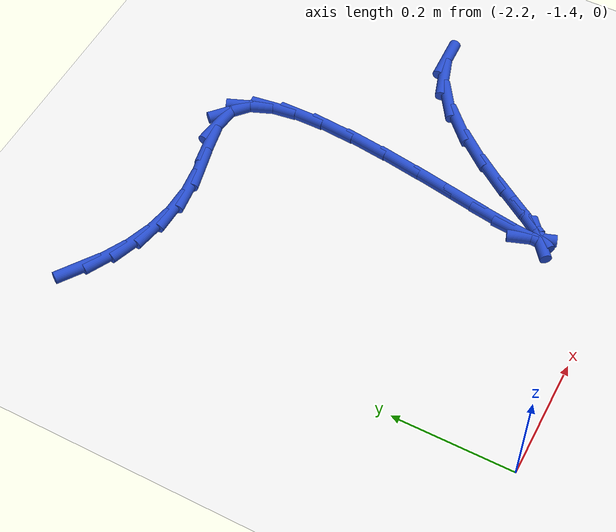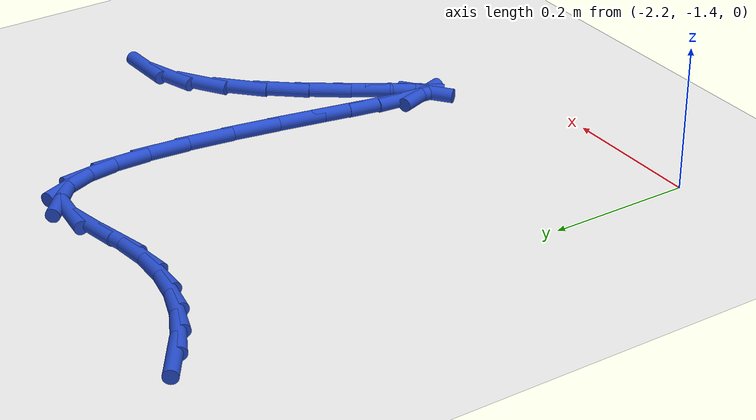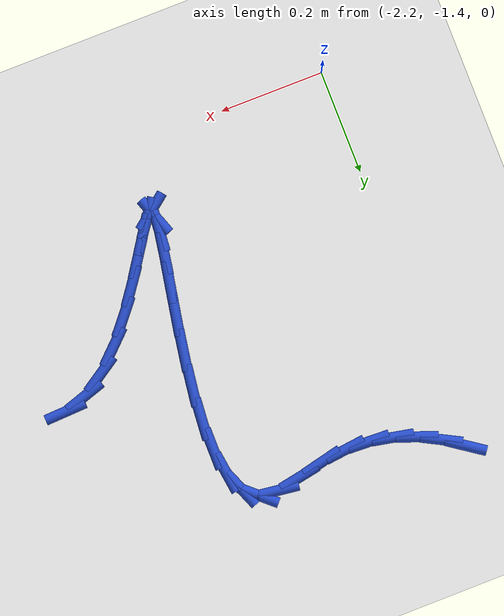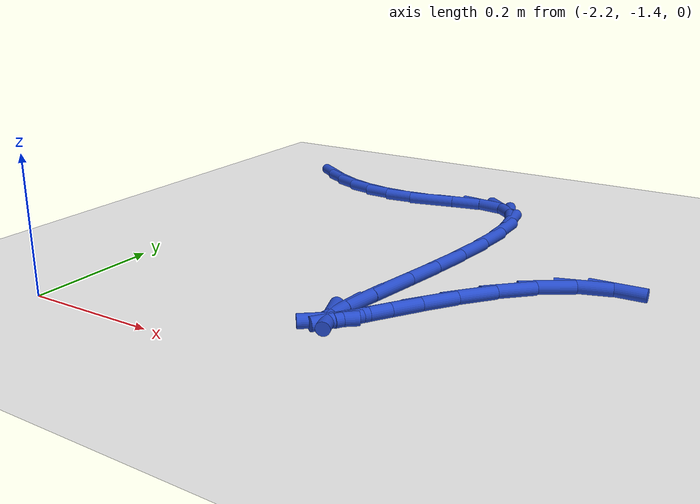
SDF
<sdf version="1.6">
 <world name="default">
  <model name="ground_plane">
   <static>1</static>
   <link name="link">
    <collision name="collision">
     <geometry><plane><normal>0 0 1</normal><size>100 100</size></plane></geometry>
     <surface><friction><ode><mu>100</mu><mu2>50</mu2></ode></friction></surface>
    </collision>
    <visual name="visual">
     <cast_shadows>0</cast_shadows>
     <geometry><plane><normal>0 0 1</normal><size>100 100</size></plane></geometry>
     <material>
      <script><uri>file://media/materials/scripts/gazebo.material</uri><name>Gazebo/WhiteGlow</name></script>
     </material>
    </visual>
   </link>
  </model>
  <model name="line">
   <link name="link_104">
    <pose>-2.1966533031225834 -0.6531262615738779 0.01 0 1.57 -0.6097737545110093</pose>
    <collision name="collision">
     <geometry><cylinder><radius>0.01</radius><length>0.08</length></cylinder></geometry>
    </collision>
    <visual name="visual">
     <material>
      <script><name>Gazebo/Blue</name><uri>file://media/materials/scripts/gazebo.material</uri></script>
     </material>
     <geometry><cylinder><radius>0.01</radius><length>0.08</length></cylinder></geometry>
    </visual>
   </link>
   <link name="link_105">
    <pose>-2.1585192303656506 -0.6797660441817078 0.01 0 1.57 -0.484161533849588</pose>
    <collision name="collision">
     <geometry><cylinder><radius>0.01</radius><length>0.08</length></cylinder></geometry>
    </collision>
    <visual name="visual">
     <material>
      <script><name>Gazebo/Blue</name><uri>file://media/materials/scripts/gazebo.material</uri></script>
     </material>
     <geometry><cylinder><radius>0.01</radius><length>0.08</length></cylinder></geometry>
    </visual>
   </link>
   <link name="link_106">
    <pose>-2.1182261841894126 -0.7009566333267483 0.01 0 1.57 -0.3452224587544478</pose>
    <collision name="collision">
     <geometry><cylinder><radius>0.01</radius><length>0.08</length></cylinder></geometry>
    </collision>
    <visual name="visual">
     <material>
      <script><name>Gazebo/Blue</name><uri>file://media/materials/scripts/gazebo.material</uri></script>
     </material>
     <geometry><cylinder><radius>0.01</radius><length>0.08</length></cylinder></geometry>
    </visual>
   </link>
   <link name="link_107">
    <pose>-2.0758170305263697 -0.7162079722306943 0.01 0 1.57 -0.19578578161549126</pose>
    <collision name="collision">
     <geometry><cylinder><radius>0.01</radius><length>0.08</length></cylinder></geometry>
    </collision>
    <visual name="visual">
     <material>
      <script><name>Gazebo/Blue</name><uri>file://media/materials/scripts/gazebo.material</uri></script>
     </material>
     <geometry><cylinder><radius>0.01</radius><length>0.08</length></cylinder></geometry>
    </visual>
   </link>
   <link name="link_108">
    <pose>-2.0313346353090207 -0.7250300041152404 0.01 0 1.57 -0.04088356493906653</pose>
    <collision name="collision">
     <geometry><cylinder><radius>0.01</radius><length>0.08</length></cylinder></geometry>
    </collision>
    <visual name="visual">
     <material>
      <script><name>Gazebo/Blue</name><uri>file://media/materials/scripts/gazebo.material</uri></script>
     </material>
     <geometry><cylinder><radius>0.01</radius><length>0.08</length></cylinder></geometry>
    </visual>
   </link>
   <link name="link_109">
    <pose>-1.9848218644698636 -0.7269326722020812 0.01 0 1.57 0.11304480200438631</pose>
    <collision name="collision">
     <geometry><cylinder><radius>0.01</radius><length>0.08</length></cylinder></geometry>
    </collision>
    <visual name="visual">
     <material>
      <script><name>Gazebo/Blue</name><uri>file://media/materials/scripts/gazebo.material</uri></script>
     </material>
     <geometry><cylinder><radius>0.01</radius><length>0.08</length></cylinder></geometry>
    </visual>
   </link>
   <link name="link_110">
    <pose>-1.9363218800487767 -0.7214265264807346 0.01 0 1.57 0.22387740840761758</pose>
    <collision name="collision">
     <geometry><cylinder><radius>0.01</radius><length>0.08</length></cylinder></geometry>
    </collision>
    <visual name="visual">
     <material>
      <script><name>Gazebo/Blue</name><uri>file://media/materials/scripts/gazebo.material</uri></script>
     </material>
     <geometry><cylinder><radius>0.01</radius><length>0.08</length></cylinder></geometry>
    </visual>
   </link>
   <link name="link_111">
    <pose>-1.8869311738122707 -0.710180545392127 0.01 0 1.57 0.1796744841332522</pose>
    <collision name="collision">
     <geometry><cylinder><radius>0.01</radius><length>0.08</length></cylinder></geometry>
    </collision>
    <visual name="visual">
     <material>
      <script><name>Gazebo/Blue</name><uri>file://media/materials/scripts/gazebo.material</uri></script>
     </material>
     <geometry><cylinder><radius>0.01</radius><length>0.08</length></cylinder></geometry>
    </visual>
   </link>
   <link name="link_112">
    <pose>-1.8411642657677603 -0.7018677529446153 0.01 0 1.57 -0.12473123113539458</pose>
    <collision name="collision">
     <geometry><cylinder><radius>0.01</radius><length>0.08</length></cylinder></geometry>
    </collision>
    <visual name="visual">
     <material>
      <script><name>Gazebo/Blue</name><uri>file://media/materials/scripts/gazebo.material</uri></script>
     </material>
     <geometry><cylinder><radius>0.01</radius><length>0.08</length></cylinder></geometry>
    </visual>
   </link>
   <link name="link_113">
    <pose>-1.8041891353554471 -0.7065037736738298 0.01 0 1.57 -0.7277862625019718</pose>
    <collision name="collision">
     <geometry><cylinder><radius>0.01</radius><length>0.08</length></cylinder></geometry>
    </collision>
    <visual name="visual">
     <material>
      <script><name>Gazebo/Blue</name><uri>file://media/materials/scripts/gazebo.material</uri></script>
     </material>
     <geometry><cylinder><radius>0.01</radius><length>0.08</length></cylinder></geometry>
    </visual>
   </link>
   <link name="link_114">
    <pose>-1.7786822914104479 -0.7292288089619734 0.01 0 1.57 -1.1891800316909846</pose>
    <collision name="collision">
     <geometry><cylinder><radius>0.01</radius><length>0.08</length></cylinder></geometry>
    </collision>
    <visual name="visual">
     <material>
      <script><name>Gazebo/Blue</name><uri>file://media/materials/scripts/gazebo.material</uri></script>
     </material>
     <geometry><cylinder><radius>0.01</radius><length>0.08</length></cylinder></geometry>
    </visual>
   </link>
   <link name="link_115">
    <pose>-1.7633550784285652 -0.7674238460196791 0.01 0 1.57 -1.4367662441974947</pose>
    <collision name="collision">
     <geometry><cylinder><radius>0.01</radius><length>0.08</length></cylinder></geometry>
    </collision>
    <visual name="visual">
     <material>
      <script><name>Gazebo/Blue</name><uri>file://media/materials/scripts/gazebo.material</uri></script>
     </material>
     <geometry><cylinder><radius>0.01</radius><length>0.08</length></cylinder></geometry>
    </visual>
   </link>
   <link name="link_116">
    <pose>-1.756565375290749 -0.817778194443928 0.01 0 1.57 1.569011188717742</pose>
    <collision name="collision">
     <geometry><cylinder><radius>0.01</radius><length>0.08</length></cylinder></geometry>
    </collision>
    <visual name="visual">
     <material>
      <script><name>Gazebo/Blue</name><uri>file://media/materials/scripts/gazebo.material</uri></script>
     </material>
     <geometry><cylinder><radius>0.01</radius><length>0.08</length></cylinder></geometry>
    </visual>
   </link>
   <link name="link_117">
    <pose>-1.7566710608779472 -0.8769811638317024 0.01 0 1.57 1.4882092166362</pose>
    <collision name="collision">
     <geometry><cylinder><radius>0.01</radius><length>0.08</length></cylinder></geometry>
    </collision>
    <visual name="visual">
     <material>
      <script><name>Gazebo/Blue</name><uri>file://media/materials/scripts/gazebo.material</uri></script>
     </material>
     <geometry><cylinder><radius>0.01</radius><length>0.08</length></cylinder></geometry>
    </visual>
   </link>
   <link name="link_118">
    <pose>-1.762030014071108 -0.941722063779985 0.01 0 1.57 1.4376430951350934</pose>
    <collision name="collision">
     <geometry><cylinder><radius>0.01</radius><length>0.08</length></cylinder></geometry>
    </collision>
    <visual name="visual">
     <material>
      <script><name>Gazebo/Blue</name><uri>file://media/materials/scripts/gazebo.material</uri></script>
     </material>
     <geometry><cylinder><radius>0.01</radius><length>0.08</length></cylinder></geometry>
    </visual>
   </link>
   <link name="link_119">
    <pose>-1.771000113751181 -1.0086902038857586 0.01 0 1.57 1.4062628893169693</pose>
    <collision name="collision">
     <geometry><cylinder><radius>0.01</radius><length>0.08</length></cylinder></geometry>
    </collision>
    <visual name="visual">
     <material>
      <script><name>Gazebo/Blue</name><uri>file://media/materials/scripts/gazebo.material</uri></script>
     </material>
     <geometry><cylinder><radius>0.01</radius><length>0.08</length></cylinder></geometry>
    </visual>
   </link>
   <link name="link_120">
    <pose>-1.7819392387991135 -1.0745748937460058 0.01 0 1.57 1.389590437157751</pose>
    <collision name="collision">
     <geometry><cylinder><radius>0.01</radius><length>0.08</length></cylinder></geometry>
    </collision>
    <visual name="visual">
     <material>
      <script><name>Gazebo/Blue</name><uri>file://media/materials/scripts/gazebo.material</uri></script>
     </material>
     <geometry><cylinder><radius>0.01</radius><length>0.08</length></cylinder></geometry>
    </visual>
   </link>
   <link name="link_121">
    <pose>-1.7932052680958543 -1.1360654429577073 0.01 0 1.57 1.3878563888090871</pose>
    <collision name="collision">
     <geometry><cylinder><radius>0.01</radius><length>0.08</length></cylinder></geometry>
    </collision>
    <visual name="visual">
     <material>
      <script><name>Gazebo/Blue</name><uri>file://media/materials/scripts/gazebo.material</uri></script>
     </material>
     <geometry><cylinder><radius>0.01</radius><length>0.08</length></cylinder></geometry>
    </visual>
   </link>
   <link name="link_122">
    <pose>-1.8031560805223525 -1.189851161117846 0.01 0 1.57 1.4087178411355126</pose>
    <collision name="collision">
     <geometry><cylinder><radius>0.01</radius><length>0.08</length></cylinder></geometry>
    </collision>
    <visual name="visual">
     <material>
      <script><name>Gazebo/Blue</name><uri>file://media/materials/scripts/gazebo.material</uri></script>
     </material>
     <geometry><cylinder><radius>0.01</radius><length>0.08</length></cylinder></geometry>
    </visual>
   </link>
   <link name="link_123">
    <pose>-1.8101495549595572 -1.232621357823405 0.01 0 1.57 1.4868282663320942</pose>
    <collision name="collision">
     <geometry><cylinder><radius>0.01</radius><length>0.08</length></cylinder></geometry>
    </collision>
    <visual name="visual">
     <material>
      <script><name>Gazebo/Blue</name><uri>file://media/materials/scripts/gazebo.material</uri></script>
     </material>
     <geometry><cylinder><radius>0.01</radius><length>0.08</length></cylinder></geometry>
    </visual>
   </link>
   <link name="link_124">
    <pose>-1.8125435702884154 -1.2610653426713663 0.01 0 1.57 -1.2287663309172432</pose>
    <collision name="collision">
     <geometry><cylinder><radius>0.01</radius><length>0.08</length></cylinder></geometry>
    </collision>
    <visual name="visual">
     <material>
      <script><name>Gazebo/Blue</name><uri>file://media/materials/scripts/gazebo.material</uri></script>
     </material>
     <geometry><cylinder><radius>0.01</radius><length>0.08</length></cylinder></geometry>
    </visual>
   </link>
   <link name="link_125">
    <pose>-1.8086960053898768 -1.2718724252587121 0.01 0 1.57 0.6689313380836461</pose>
    <collision name="collision">
     <geometry><cylinder><radius>0.01</radius><length>0.08</length></cylinder></geometry>
    </collision>
    <visual name="visual">
     <material>
      <script><name>Gazebo/Blue</name><uri>file://media/materials/scripts/gazebo.material</uri></script>
     </material>
     <geometry><cylinder><radius>0.01</radius><length>0.08</length></cylinder></geometry>
    </visual>
   </link>
   <link name="link_126">
    <pose>-1.7973334982442486 -1.2628901790588802 0.01 0 1.57 0.9463901806495498</pose>
    <collision name="collision">
     <geometry><cylinder><radius>0.01</radius><length>0.08</length></cylinder></geometry>
    </collision>
    <visual name="visual">
     <material>
      <script><name>Gazebo/Blue</name><uri>file://media/materials/scripts/gazebo.material</uri></script>
     </material>
     <geometry><cylinder><radius>0.01</radius><length>0.08</length></cylinder></geometry>
    </visual>
   </link>
   <link name="link_127">
    <pose>-1.778870655122655 -1.2372680472462831 0.01 0 1.57 0.9901662048699876</pose>
    <collision name="collision">
     <geometry><cylinder><radius>0.01</radius><length>0.08</length></cylinder></geometry>
    </collision>
    <visual name="visual">
     <material>
      <script><name>Gazebo/Blue</name><uri>file://media/materials/scripts/gazebo.material</uri></script>
     </material>
     <geometry><cylinder><radius>0.01</radius><length>0.08</length></cylinder></geometry>
    </visual>
   </link>
   <link name="link_128">
    <pose>-1.7542047744356852 -1.1996715979385941 0.01 0 1.57 0.9822564341159143</pose>
    <collision name="collision">
     <geometry><cylinder><radius>0.01</radius><length>0.08</length></cylinder></geometry>
    </collision>
    <visual name="visual">
     <material>
      <script><name>Gazebo/Blue</name><uri>file://media/materials/scripts/gazebo.material</uri></script>
     </material>
     <geometry><cylinder><radius>0.01</radius><length>0.08</length></cylinder></geometry>
    </visual>
   </link>
   <link name="link_129">
    <pose>-1.7242331928932828 -1.1547665195508812 0.01 0 1.57 0.9447626431489808</pose>
    <collision name="collision">
     <geometry><cylinder><radius>0.01</radius><length>0.08</length></cylinder></geometry>
    </collision>
    <visual name="visual">
     <material>
      <script><name>Gazebo/Blue</name><uri>file://media/materials/scripts/gazebo.material</uri></script>
     </material>
     <geometry><cylinder><radius>0.01</radius><length>0.08</length></cylinder></geometry>
    </visual>
   </link>
   <link name="link_130">
    <pose>-1.6898532472053929 -1.107218500498211 0.01 0 1.57 0.8766644358128399</pose>
    <collision name="collision">
     <geometry><cylinder><radius>0.01</radius><length>0.08</length></cylinder></geometry>
    </collision>
    <visual name="visual">
     <material>
      <script><name>Gazebo/Blue</name><uri>file://media/materials/scripts/gazebo.material</uri></script>
     </material>
     <geometry><cylinder><radius>0.01</radius><length>0.08</length></cylinder></geometry>
    </visual>
   </link>
   <link name="link_131">
    <pose>-1.651962274081958 -1.0616932291956491 0.01 0 1.57 0.7643803714564075</pose>
    <collision name="collision">
     <geometry><cylinder><radius>0.01</radius><length>0.08</length></cylinder></geometry>
    </collision>
    <visual name="visual">
     <material>
      <script><name>Gazebo/Blue</name><uri>file://media/materials/scripts/gazebo.material</uri></script>
     </material>
     <geometry><cylinder><radius>0.01</radius><length>0.08</length></cylinder></geometry>
    </visual>
   </link>
   <link name="link_132">
    <pose>-1.6114576102329239 -1.022856394058266 0.01 0 1.57 0.5773770665753168</pose>
    <collision name="collision">
     <geometry><cylinder><radius>0.01</radius><length>0.08</length></cylinder></geometry>
    </collision>
    <visual name="visual">
     <material>
      <script><name>Gazebo/Blue</name><uri>file://media/materials/scripts/gazebo.material</uri></script>
     </material>
     <geometry><cylinder><radius>0.01</radius><length>0.08</length></cylinder></geometry>
    </visual>
   </link>
   <link name="link_133">
    <pose>-1.569234279482348 -0.9953510162769204 0.01 0 1.57 0.3089642538139264</pose>
    <collision name="collision">
     <geometry><cylinder><radius>0.01</radius><length>0.08</length></cylinder></geometry>
    </collision>
    <visual name="visual">
     <material>
      <script><name>Gazebo/Blue</name><uri>file://media/materials/scripts/gazebo.material</uri></script>
     </material>
     <geometry><cylinder><radius>0.01</radius><length>0.08</length></cylinder></geometry>
    </visual>
   </link>
   <link name="link_134">
    <pose>-1.5259543097183361 -0.9815366619225956 0.01 0 1.57 0.04465571107869048</pose>
    <collision name="collision">
     <geometry><cylinder><radius>0.01</radius><length>0.08</length></cylinder></geometry>
    </collision>
    <visual name="visual">
     <material>
      <script><name>Gazebo/Blue</name><uri>file://media/materials/scripts/gazebo.material</uri></script>
     </material>
     <geometry><cylinder><radius>0.01</radius><length>0.08</length></cylinder></geometry>
    </visual>
   </link>
  </model>
 </world>
</sdf>
